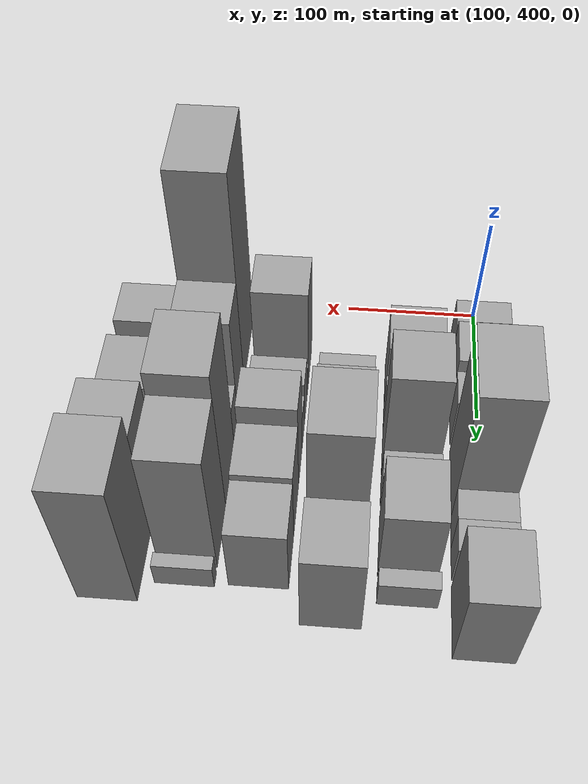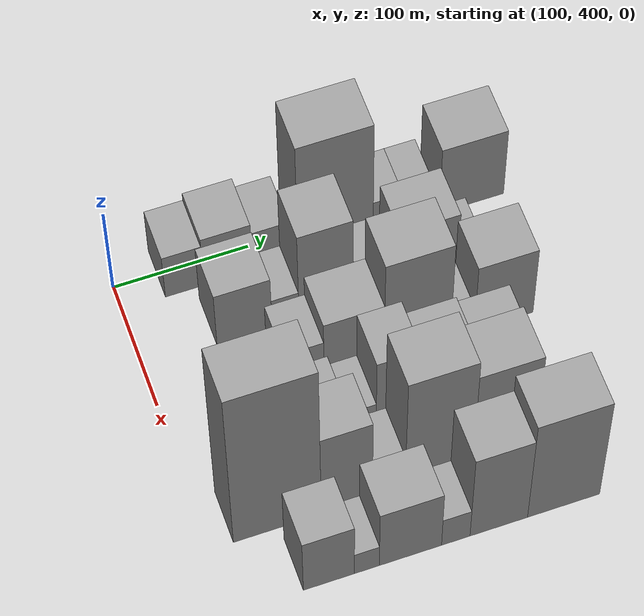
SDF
<sdf version="1.6">
 <world name="default">
  <model name="building_43">
   <static>1</static>
   <pose>100.0000 446.2726 0 0.000000 0.000000 0.000000</pose>
   <link name="link">
    <pose>0 0 27.00 0 0 0</pose>
    <collision name="collision"><geometry><box><size>40.0000 28.5061 54.0000</size></box></geometry></collision>
    <visual name="visual">
     <cast_shadows>0</cast_shadows>
     <geometry><box><size>40.0000 28.5061 54.0000</size></box></geometry>
     <material>
      <script>
       <uri>model://grey_wall/materials/scripts</uri>
       <uri>model://grey_wall/materials/textures</uri>
       <name>vrc/grey_wall</name>
      </script>
     </material>
    </visual>
   </link>
  </model>
  <model name="building_44">
   <static>1</static>
   <pose>100.0000 478.7097 0 0.000000 0.000000 0.000000</pose>
   <link name="link">
    <pose>0 0 31.50 0 0 0</pose>
    <collision name="collision"><geometry><box><size>40.0000 36.3681 63.0000</size></box></geometry></collision>
    <visual name="visual">
     <cast_shadows>0</cast_shadows>
     <geometry><box><size>40.0000 36.3681 63.0000</size></box></geometry>
     <material>
      <script>
       <uri>model://grey_wall/materials/scripts</uri>
       <uri>model://grey_wall/materials/textures</uri>
       <name>vrc/grey_wall</name>
      </script>
     </material>
    </visual>
   </link>
  </model>
  <model name="building_45">
   <static>1</static>
   <pose>100.0000 510.9054 0 0.000000 0.000000 0.000000</pose>
   <link name="link">
    <pose>0 0 25.50 0 0 0</pose>
    <collision name="collision"><geometry><box><size>40.0000 28.0233 51.0000</size></box></geometry></collision>
    <visual name="visual">
     <cast_shadows>0</cast_shadows>
     <geometry><box><size>40.0000 28.0233 51.0000</size></box></geometry>
     <material>
      <script>
       <uri>model://grey_wall/materials/scripts</uri>
       <uri>model://grey_wall/materials/textures</uri>
       <name>vrc/grey_wall</name>
      </script>
     </material>
    </visual>
   </link>
  </model>
  <model name="building_46">
   <static>1</static>
   <pose>100.0000 559.2429 0 0.000000 0.000000 0.000000</pose>
   <link name="link">
    <pose>0 0 72.00 0 0 0</pose>
    <collision name="collision"><geometry><box><size>40.0000 56.6516 144.0000</size></box></geometry></collision>
    <visual name="visual">
     <cast_shadows>0</cast_shadows>
     <geometry><box><size>40.0000 56.6516 144.0000</size></box></geometry>
     <material>
      <script>
       <uri>model://grey_wall/materials/scripts</uri>
       <uri>model://grey_wall/materials/textures</uri>
       <name>vrc/grey_wall</name>
      </script>
     </material>
    </visual>
   </link>
  </model>
  <model name="building_47">
   <static>1</static>
   <pose>100.0000 598.6686 0 0.000000 0.000000 0.000000</pose>
   <link name="link">
    <pose>0 0 21.00 0 0 0</pose>
    <collision name="collision"><geometry><box><size>40.0000 22.1999 42.0000</size></box></geometry></collision>
    <visual name="visual">
     <cast_shadows>0</cast_shadows>
     <geometry><box><size>40.0000 22.1999 42.0000</size></box></geometry>
     <material>
      <script>
       <uri>model://grey_wall/materials/scripts</uri>
       <uri>model://grey_wall/materials/textures</uri>
       <name>vrc/grey_wall</name>
      </script>
     </material>
    </visual>
   </link>
  </model>
  <model name="building_48">
   <static>1</static>
   <pose>100.0000 621.4675 0 0.000000 0.000000 0.000000</pose>
   <link name="link">
    <pose>0 0 21.00 0 0 0</pose>
    <collision name="collision"><geometry><box><size>40.0000 23.3979 42.0000</size></box></geometry></collision>
    <visual name="visual">
     <cast_shadows>0</cast_shadows>
     <geometry><box><size>40.0000 23.3979 42.0000</size></box></geometry>
     <material>
      <script>
       <uri>model://grey_wall/materials/scripts</uri>
       <uri>model://grey_wall/materials/textures</uri>
       <name>vrc/grey_wall</name>
      </script>
     </material>
    </visual>
   </link>
  </model>
  <model name="building_49">
   <static>1</static>
   <pose>100.0000 662.6678 0 0.000000 0.000000 0.000000</pose>
   <link name="link">
    <pose>0 0 42.00 0 0 0</pose>
    <collision name="collision"><geometry><box><size>40.0000 49.0027 84.0000</size></box></geometry></collision>
    <visual name="visual">
     <cast_shadows>0</cast_shadows>
     <geometry><box><size>40.0000 49.0027 84.0000</size></box></geometry>
     <material>
      <script>
       <uri>model://grey_wall/materials/scripts</uri>
       <uri>model://grey_wall/materials/textures</uri>
       <name>vrc/grey_wall</name>
      </script>
     </material>
    </visual>
   </link>
  </model>
  <model name="building_99">
   <static>1</static>
   <pose>149.0000 474.5249 0 0.000000 0.000000 0.000000</pose>
   <link name="link">
    <pose>0 0 34.50 0 0 0</pose>
    <collision name="collision"><geometry><box><size>40.0000 40.7406 69.0000</size></box></geometry></collision>
    <visual name="visual">
     <cast_shadows>0</cast_shadows>
     <geometry><box><size>40.0000 40.7406 69.0000</size></box></geometry>
     <material>
      <script>
       <uri>model://grey_wall/materials/scripts</uri>
       <uri>model://grey_wall/materials/textures</uri>
       <name>vrc/grey_wall</name>
      </script>
     </material>
    </visual>
   </link>
  </model>
  <model name="building_100">
   <static>1</static>
   <pose>149.0000 504.8816 0 0.000000 0.000000 0.000000</pose>
   <link name="link">
    <pose>0 0 19.50 0 0 0</pose>
    <collision name="collision"><geometry><box><size>40.0000 19.9729 39.0000</size></box></geometry></collision>
    <visual name="visual">
     <cast_shadows>0</cast_shadows>
     <geometry><box><size>40.0000 19.9729 39.0000</size></box></geometry>
     <material>
      <script>
       <uri>model://grey_wall/materials/scripts</uri>
       <uri>model://grey_wall/materials/textures</uri>
       <name>vrc/grey_wall</name>
      </script>
     </material>
    </visual>
   </link>
  </model>
  <model name="building_101">
   <static>1</static>
   <pose>149.0000 534.9951 0 0.000000 0.000000 0.000000</pose>
   <link name="link">
    <pose>0 0 57.00 0 0 0</pose>
    <collision name="collision"><geometry><box><size>40.0000 40.2542 114.0000</size></box></geometry></collision>
    <visual name="visual">
     <cast_shadows>0</cast_shadows>
     <geometry><box><size>40.0000 40.2542 114.0000</size></box></geometry>
     <material>
      <script>
       <uri>model://grey_wall/materials/scripts</uri>
       <uri>model://grey_wall/materials/textures</uri>
       <name>vrc/grey_wall</name>
      </script>
     </material>
    </visual>
   </link>
  </model>
  <model name="building_102">
   <static>1</static>
   <pose>149.0000 569.5381 0 0.000000 0.000000 0.000000</pose>
   <link name="link">
    <pose>0 0 19.50 0 0 0</pose>
    <collision name="collision"><geometry><box><size>40.0000 20.8317 39.0000</size></box></geometry></collision>
    <visual name="visual">
     <cast_shadows>0</cast_shadows>
     <geometry><box><size>40.0000 20.8317 39.0000</size></box></geometry>
     <material>
      <script>
       <uri>model://grey_wall/materials/scripts</uri>
       <uri>model://grey_wall/materials/textures</uri>
       <name>vrc/grey_wall</name>
      </script>
     </material>
    </visual>
   </link>
  </model>
  <model name="building_103">
   <static>1</static>
   <pose>149.0000 611.3906 0 0.000000 0.000000 0.000000</pose>
   <link name="link">
    <pose>0 0 39.00 0 0 0</pose>
    <collision name="collision"><geometry><box><size>40.0000 44.8732 78.0000</size></box></geometry></collision>
    <visual name="visual">
     <cast_shadows>0</cast_shadows>
     <geometry><box><size>40.0000 44.8732 78.0000</size></box></geometry>
     <material>
      <script>
       <uri>model://grey_wall/materials/scripts</uri>
       <uri>model://grey_wall/materials/textures</uri>
       <name>vrc/grey_wall</name>
      </script>
     </material>
    </visual>
   </link>
  </model>
  <model name="building_104">
   <static>1</static>
   <pose>149.0000 647.1816 0 0.000000 0.000000 0.000000</pose>
   <link name="link">
    <pose>0 0 13.50 0 0 0</pose>
    <collision name="collision"><geometry><box><size>40.0000 12.7090 27.0000</size></box></geometry></collision>
    <visual name="visual">
     <cast_shadows>0</cast_shadows>
     <geometry><box><size>40.0000 12.7090 27.0000</size></box></geometry>
     <material>
      <script>
       <uri>model://grey_wall/materials/scripts</uri>
       <uri>model://grey_wall/materials/textures</uri>
       <name>vrc/grey_wall</name>
      </script>
     </material>
    </visual>
   </link>
  </model>
  <model name="building_151">
   <static>1</static>
   <pose>198.0000 501.8376 0 0.000000 0.000000 0.000000</pose>
   <link name="link">
    <pose>0 0 25.50 0 0 0</pose>
    <collision name="collision"><geometry><box><size>40.0000 29.0835 51.0000</size></box></geometry></collision>
    <visual name="visual">
     <cast_shadows>0</cast_shadows>
     <geometry><box><size>40.0000 29.0835 51.0000</size></box></geometry>
     <material>
      <script>
       <uri>model://grey_wall/materials/scripts</uri>
       <uri>model://grey_wall/materials/textures</uri>
       <name>vrc/grey_wall</name>
      </script>
     </material>
    </visual>
   </link>
  </model>
  <model name="building_152">
   <static>1</static>
   <pose>198.0000 538.4800 0 0.000000 0.000000 0.000000</pose>
   <link name="link">
    <pose>0 0 37.50 0 0 0</pose>
    <collision name="collision"><geometry><box><size>40.0000 44.2013 75.0000</size></box></geometry></collision>
    <visual name="visual">
     <cast_shadows>0</cast_shadows>
     <geometry><box><size>40.0000 44.2013 75.0000</size></box></geometry>
     <material>
      <script>
       <uri>model://grey_wall/materials/scripts</uri>
       <uri>model://grey_wall/materials/textures</uri>
       <name>vrc/grey_wall</name>
      </script>
     </material>
    </visual>
   </link>
  </model>
  <model name="building_153">
   <static>1</static>
   <pose>198.0000 585.3337 0 0.000000 0.000000 0.000000</pose>
   <link name="link">
    <pose>0 0 64.50 0 0 0</pose>
    <collision name="collision"><geometry><box><size>40.0000 49.5060 129.0000</size></box></geometry></collision>
    <visual name="visual">
     <cast_shadows>0</cast_shadows>
     <geometry><box><size>40.0000 49.5060 129.0000</size></box></geometry>
     <material>
      <script>
       <uri>model://grey_wall/materials/scripts</uri>
       <uri>model://grey_wall/materials/textures</uri>
       <name>vrc/grey_wall</name>
      </script>
     </material>
    </visual>
   </link>
  </model>
  <model name="building_154">
   <static>1</static>
   <pose>198.0000 619.0018 0 0.000000 0.000000 0.000000</pose>
   <link name="link">
    <pose>0 0 15.00 0 0 0</pose>
    <collision name="collision"><geometry><box><size>40.0000 17.8302 30.0000</size></box></geometry></collision>
    <visual name="visual">
     <cast_shadows>0</cast_shadows>
     <geometry><box><size>40.0000 17.8302 30.0000</size></box></geometry>
     <material>
      <script>
       <uri>model://grey_wall/materials/scripts</uri>
       <uri>model://grey_wall/materials/textures</uri>
       <name>vrc/grey_wall</name>
      </script>
     </material>
    </visual>
   </link>
  </model>
  <model name="building_155">
   <static>1</static>
   <pose>198.0000 649.9131 0 0.000000 0.000000 0.000000</pose>
   <link name="link">
    <pose>0 0 43.50 0 0 0</pose>
    <collision name="collision"><geometry><box><size>40.0000 43.9924 87.0000</size></box></geometry></collision>
    <visual name="visual">
     <cast_shadows>0</cast_shadows>
     <geometry><box><size>40.0000 43.9924 87.0000</size></box></geometry>
     <material>
      <script>
       <uri>model://grey_wall/materials/scripts</uri>
       <uri>model://grey_wall/materials/textures</uri>
       <name>vrc/grey_wall</name>
      </script>
     </material>
    </visual>
   </link>
  </model>
  <model name="building_191">
   <static>1</static>
   <pose>247.0000 461.4793 0 0.000000 0.000000 0.000000</pose>
   <link name="link">
    <pose>0 0 51.00 0 0 0</pose>
    <collision name="collision"><geometry><box><size>40.0000 36.1194 102.0000</size></box></geometry></collision>
    <visual name="visual">
     <cast_shadows>0</cast_shadows>
     <geometry><box><size>40.0000 36.1194 102.0000</size></box></geometry>
     <material>
      <script>
       <uri>model://grey_wall/materials/scripts</uri>
       <uri>model://grey_wall/materials/textures</uri>
       <name>vrc/grey_wall</name>
      </script>
     </material>
    </visual>
   </link>
  </model>
  <model name="building_192">
   <static>1</static>
   <pose>247.0000 485.3309 0 0.000000 0.000000 0.000000</pose>
   <link name="link">
    <pose>0 0 13.50 0 0 0</pose>
    <collision name="collision"><geometry><box><size>40.0000 11.5838 27.0000</size></box></geometry></collision>
    <visual name="visual">
     <cast_shadows>0</cast_shadows>
     <geometry><box><size>40.0000 11.5838 27.0000</size></box></geometry>
     <material>
      <script>
       <uri>model://grey_wall/materials/scripts</uri>
       <uri>model://grey_wall/materials/textures</uri>
       <name>vrc/grey_wall</name>
      </script>
     </material>
    </visual>
   </link>
  </model>
  <model name="building_193">
   <static>1</static>
   <pose>247.0000 503.4607 0 0.000000 0.000000 0.000000</pose>
   <link name="link">
    <pose>0 0 24.00 0 0 0</pose>
    <collision name="collision"><geometry><box><size>40.0000 24.6760 48.0000</size></box></geometry></collision>
    <visual name="visual">
     <cast_shadows>0</cast_shadows>
     <geometry><box><size>40.0000 24.6760 48.0000</size></box></geometry>
     <material>
      <script>
       <uri>model://grey_wall/materials/scripts</uri>
       <uri>model://grey_wall/materials/textures</uri>
       <name>vrc/grey_wall</name>
      </script>
     </material>
    </visual>
   </link>
  </model>
  <model name="building_194">
   <static>1</static>
   <pose>247.0000 526.4495 0 0.000000 0.000000 0.000000</pose>
   <link name="link">
    <pose>0 0 18.00 0 0 0</pose>
    <collision name="collision"><geometry><box><size>40.0000 21.3015 36.0000</size></box></geometry></collision>
    <visual name="visual">
     <cast_shadows>0</cast_shadows>
     <geometry><box><size>40.0000 21.3015 36.0000</size></box></geometry>
     <material>
      <script>
       <uri>model://grey_wall/materials/scripts</uri>
       <uri>model://grey_wall/materials/textures</uri>
       <name>vrc/grey_wall</name>
      </script>
     </material>
    </visual>
   </link>
  </model>
  <model name="building_195">
   <static>1</static>
   <pose>247.0000 553.0447 0 0.000000 0.000000 0.000000</pose>
   <link name="link">
    <pose>0 0 46.50 0 0 0</pose>
    <collision name="collision"><geometry><box><size>40.0000 31.8889 93.0000</size></box></geometry></collision>
    <visual name="visual">
     <cast_shadows>0</cast_shadows>
     <geometry><box><size>40.0000 31.8889 93.0000</size></box></geometry>
     <material>
      <script>
       <uri>model://grey_wall/materials/scripts</uri>
       <uri>model://grey_wall/materials/textures</uri>
       <name>vrc/grey_wall</name>
      </script>
     </material>
    </visual>
   </link>
  </model>
  <model name="building_196">
   <static>1</static>
   <pose>247.0000 588.8112 0 0.000000 0.000000 0.000000</pose>
   <link name="link">
    <pose>0 0 37.50 0 0 0</pose>
    <collision name="collision"><geometry><box><size>40.0000 39.6441 75.0000</size></box></geometry></collision>
    <visual name="visual">
     <cast_shadows>0</cast_shadows>
     <geometry><box><size>40.0000 39.6441 75.0000</size></box></geometry>
     <material>
      <script>
       <uri>model://grey_wall/materials/scripts</uri>
       <uri>model://grey_wall/materials/textures</uri>
       <name>vrc/grey_wall</name>
      </script>
     </material>
    </visual>
   </link>
  </model>
  <model name="building_197">
   <static>1</static>
   <pose>247.0000 628.1541 0 0.000000 0.000000 0.000000</pose>
   <link name="link">
    <pose>0 0 34.50 0 0 0</pose>
    <collision name="collision"><geometry><box><size>40.0000 39.0417 69.0000</size></box></geometry></collision>
    <visual name="visual">
     <cast_shadows>0</cast_shadows>
     <geometry><box><size>40.0000 39.0417 69.0000</size></box></geometry>
     <material>
      <script>
       <uri>model://grey_wall/materials/scripts</uri>
       <uri>model://grey_wall/materials/textures</uri>
       <name>vrc/grey_wall</name>
      </script>
     </material>
    </visual>
   </link>
  </model>
  <model name="building_241">
   <static>1</static>
   <pose>296.0000 448.5559 0 0.000000 0.000000 0.000000</pose>
   <link name="link">
    <pose>0 0 103.50 0 0 0</pose>
    <collision name="collision"><geometry><box><size>40.0000 62.9380 207.0000</size></box></geometry></collision>
    <visual name="visual">
     <cast_shadows>0</cast_shadows>
     <geometry><box><size>40.0000 62.9380 207.0000</size></box></geometry>
     <material>
      <script>
       <uri>model://grey_wall/materials/scripts</uri>
       <uri>model://grey_wall/materials/textures</uri>
       <name>vrc/grey_wall</name>
      </script>
     </material>
    </visual>
   </link>
  </model>
  <model name="building_242">
   <static>1</static>
   <pose>296.0000 498.4198 0 0.000000 0.000000 0.000000</pose>
   <link name="link">
    <pose>0 0 55.50 0 0 0</pose>
    <collision name="collision"><geometry><box><size>40.0000 36.7898 111.0000</size></box></geometry></collision>
    <visual name="visual">
     <cast_shadows>0</cast_shadows>
     <geometry><box><size>40.0000 36.7898 111.0000</size></box></geometry>
     <material>
      <script>
       <uri>model://grey_wall/materials/scripts</uri>
       <uri>model://grey_wall/materials/textures</uri>
       <name>vrc/grey_wall</name>
      </script>
     </material>
    </visual>
   </link>
  </model>
  <model name="building_243">
   <static>1</static>
   <pose>296.0000 528.6323 0 0.000000 0.000000 0.000000</pose>
   <link name="link">
    <pose>0 0 22.50 0 0 0</pose>
    <collision name="collision"><geometry><box><size>40.0000 23.6353 45.0000</size></box></geometry></collision>
    <visual name="visual">
     <cast_shadows>0</cast_shadows>
     <geometry><box><size>40.0000 23.6353 45.0000</size></box></geometry>
     <material>
      <script>
       <uri>model://grey_wall/materials/scripts</uri>
       <uri>model://grey_wall/materials/textures</uri>
       <name>vrc/grey_wall</name>
      </script>
     </material>
    </visual>
   </link>
  </model>
  <model name="building_244">
   <static>1</static>
   <pose>296.0000 565.1753 0 0.000000 0.000000 0.000000</pose>
   <link name="link">
    <pose>0 0 75.00 0 0 0</pose>
    <collision name="collision"><geometry><box><size>40.0000 49.4507 150.0000</size></box></geometry></collision>
    <visual name="visual">
     <cast_shadows>0</cast_shadows>
     <geometry><box><size>40.0000 49.4507 150.0000</size></box></geometry>
     <material>
      <script>
       <uri>model://grey_wall/materials/scripts</uri>
       <uri>model://grey_wall/materials/textures</uri>
       <name>vrc/grey_wall</name>
      </script>
     </material>
    </visual>
   </link>
  </model>
  <model name="building_245">
   <static>1</static>
   <pose>296.0000 612.8661 0 0.000000 0.000000 0.000000</pose>
   <link name="link">
    <pose>0 0 64.50 0 0 0</pose>
    <collision name="collision"><geometry><box><size>40.0000 45.9309 129.0000</size></box></geometry></collision>
    <visual name="visual">
     <cast_shadows>0</cast_shadows>
     <geometry><box><size>40.0000 45.9309 129.0000</size></box></geometry>
     <material>
      <script>
       <uri>model://grey_wall/materials/scripts</uri>
       <uri>model://grey_wall/materials/textures</uri>
       <name>vrc/grey_wall</name>
      </script>
     </material>
    </visual>
   </link>
  </model>
  <model name="building_246">
   <static>1</static>
   <pose>296.0000 644.8237 0 0.000000 0.000000 0.000000</pose>
   <link name="link">
    <pose>0 0 12.00 0 0 0</pose>
    <collision name="collision"><geometry><box><size>40.0000 9.9842 24.0000</size></box></geometry></collision>
    <visual name="visual">
     <cast_shadows>0</cast_shadows>
     <geometry><box><size>40.0000 9.9842 24.0000</size></box></geometry>
     <material>
      <script>
       <uri>model://grey_wall/materials/scripts</uri>
       <uri>model://grey_wall/materials/textures</uri>
       <name>vrc/grey_wall</name>
      </script>
     </material>
    </visual>
   </link>
  </model>
  <model name="building_289">
   <static>1</static>
   <pose>345.0000 468.3395 0 0.000000 0.000000 0.000000</pose>
   <link name="link">
    <pose>0 0 36.00 0 0 0</pose>
    <collision name="collision"><geometry><box><size>40.0000 36.3443 72.0000</size></box></geometry></collision>
    <visual name="visual">
     <cast_shadows>0</cast_shadows>
     <geometry><box><size>40.0000 36.3443 72.0000</size></box></geometry>
     <material>
      <script>
       <uri>model://grey_wall/materials/scripts</uri>
       <uri>model://grey_wall/materials/textures</uri>
       <name>vrc/grey_wall</name>
      </script>
     </material>
    </visual>
   </link>
  </model>
  <model name="building_290">
   <static>1</static>
   <pose>345.0000 495.3656 0 0.000000 0.000000 0.000000</pose>
   <link name="link">
    <pose>0 0 15.00 0 0 0</pose>
    <collision name="collision"><geometry><box><size>40.0000 17.7078 30.0000</size></box></geometry></collision>
    <visual name="visual">
     <cast_shadows>0</cast_shadows>
     <geometry><box><size>40.0000 17.7078 30.0000</size></box></geometry>
     <material>
      <script>
       <uri>model://grey_wall/materials/scripts</uri>
       <uri>model://grey_wall/materials/textures</uri>
       <name>vrc/grey_wall</name>
      </script>
     </material>
    </visual>
   </link>
  </model>
  <model name="building_291">
   <static>1</static>
   <pose>345.0000 526.5440 0 0.000000 0.000000 0.000000</pose>
   <link name="link">
    <pose>0 0 39.00 0 0 0</pose>
    <collision name="collision"><geometry><box><size>40.0000 44.6491 78.0000</size></box></geometry></collision>
    <visual name="visual">
     <cast_shadows>0</cast_shadows>
     <geometry><box><size>40.0000 44.6491 78.0000</size></box></geometry>
     <material>
      <script>
       <uri>model://grey_wall/materials/scripts</uri>
       <uri>model://grey_wall/materials/textures</uri>
       <name>vrc/grey_wall</name>
      </script>
     </material>
    </visual>
   </link>
  </model>
  <model name="building_292">
   <static>1</static>
   <pose>345.0000 559.1212 0 0.000000 0.000000 0.000000</pose>
   <link name="link">
    <pose>0 0 19.50 0 0 0</pose>
    <collision name="collision"><geometry><box><size>40.0000 20.5052 39.0000</size></box></geometry></collision>
    <visual name="visual">
     <cast_shadows>0</cast_shadows>
     <geometry><box><size>40.0000 20.5052 39.0000</size></box></geometry>
     <material>
      <script>
       <uri>model://grey_wall/materials/scripts</uri>
       <uri>model://grey_wall/materials/textures</uri>
       <name>vrc/grey_wall</name>
      </script>
     </material>
    </visual>
   </link>
  </model>
  <model name="building_293">
   <static>1</static>
   <pose>345.0000 590.2311 0 0.000000 0.000000 0.000000</pose>
   <link name="link">
    <pose>0 0 57.00 0 0 0</pose>
    <collision name="collision"><geometry><box><size>40.0000 41.7147 114.0000</size></box></geometry></collision>
    <visual name="visual">
     <cast_shadows>0</cast_shadows>
     <geometry><box><size>40.0000 41.7147 114.0000</size></box></geometry>
     <material>
      <script>
       <uri>model://grey_wall/materials/scripts</uri>
       <uri>model://grey_wall/materials/textures</uri>
       <name>vrc/grey_wall</name>
      </script>
     </material>
    </visual>
   </link>
  </model>
  <model name="building_294">
   <static>1</static>
   <pose>345.0000 637.3700 0 0.000000 0.000000 0.000000</pose>
   <link name="link">
    <pose>0 0 67.50 0 0 0</pose>
    <collision name="collision"><geometry><box><size>40.0000 52.5630 135.0000</size></box></geometry></collision>
    <visual name="visual">
     <cast_shadows>0</cast_shadows>
     <geometry><box><size>40.0000 52.5630 135.0000</size></box></geometry>
     <material>
      <script>
       <uri>model://grey_wall/materials/scripts</uri>
       <uri>model://grey_wall/materials/textures</uri>
       <name>vrc/grey_wall</name>
      </script>
     </material>
    </visual>
   </link>
  </model>
 </world>
</sdf>
